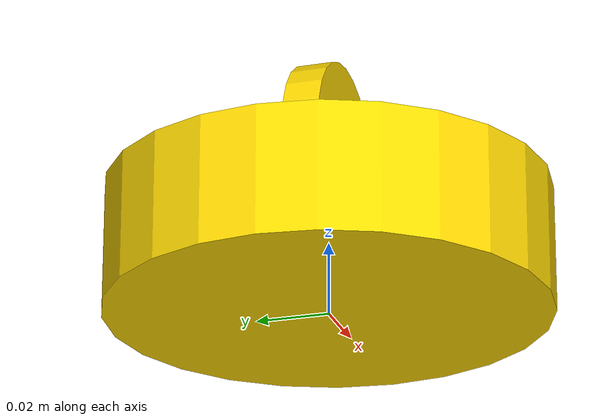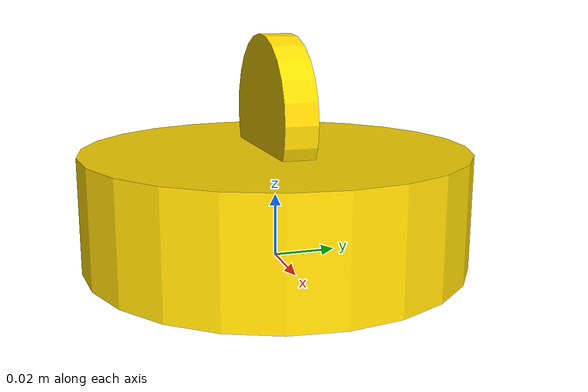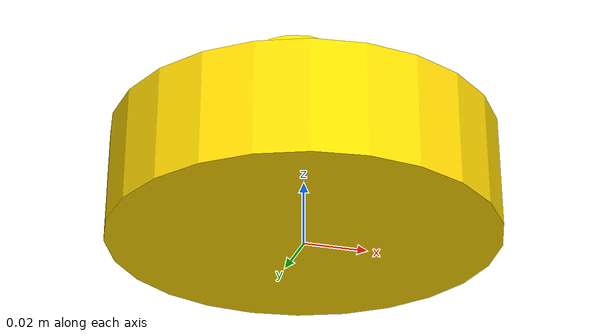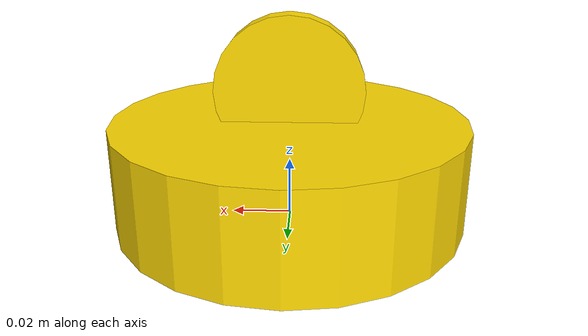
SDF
<?xml version="1.0" ?>
<sdf version="1.6">
  <model name="yellow_puck">
    <pose>0 0 0 0 0 0</pose>
    <link name="link">
      <inertial>
        <mass>0.15</mass>
        <inertia>
          <ixx>0.0002</ixx><ixy>0</ixy><ixz>0</ixz>
          <iyy>0.0002</iyy><iyz>0</iyz>
          <izz>0.0003</izz>
        </inertia>
      </inertial>

      <!-- Main Yellow Puck Base -->
      <visual name="puck_body_visual">
        <pose>0 0 0.0175 0 0 0</pose>
        <geometry>
          <cylinder>
            <radius>0.06</radius>
            <length>0.035</length>
          </cylinder>
        </geometry>
        <material>
          <ambient>1.0 0.85 0.0 1</ambient>
          <diffuse>1.0 0.85 0.0 1</diffuse>
          <specular>0.5 0.5 0.5 1</specular>
        </material>
      </visual>

      <!-- Top Loop Handle -->
      <visual name="puck_handle_visual">
        <pose>0 0 0.045 1.5708 0 0</pose>
        <geometry>
          <cylinder>
            <radius>0.025</radius>
            <length>0.01</length>
          </cylinder>
        </geometry>
        <material>
          <ambient>1.0 0.85 0.0 1</ambient>
          <diffuse>1.0 0.85 0.0 1</diffuse>
        </material>
      </visual>

      <!-- Collisions -->
      <collision name="puck_body_collision">
        <pose>0 0 0.0175 0 0 0</pose>
        <geometry>
          <cylinder>
            <radius>0.06</radius>
            <length>0.035</length>
          </cylinder>
        </geometry>
      </collision>
      <collision name="puck_handle_collision">
        <pose>0 0 0.045 1.5708 0 0</pose>
        <geometry>
          <cylinder>
            <radius>0.025</radius>
            <length>0.01</length>
          </cylinder>
        </geometry>
      </collision>
    </link>
  </model>
</sdf>
